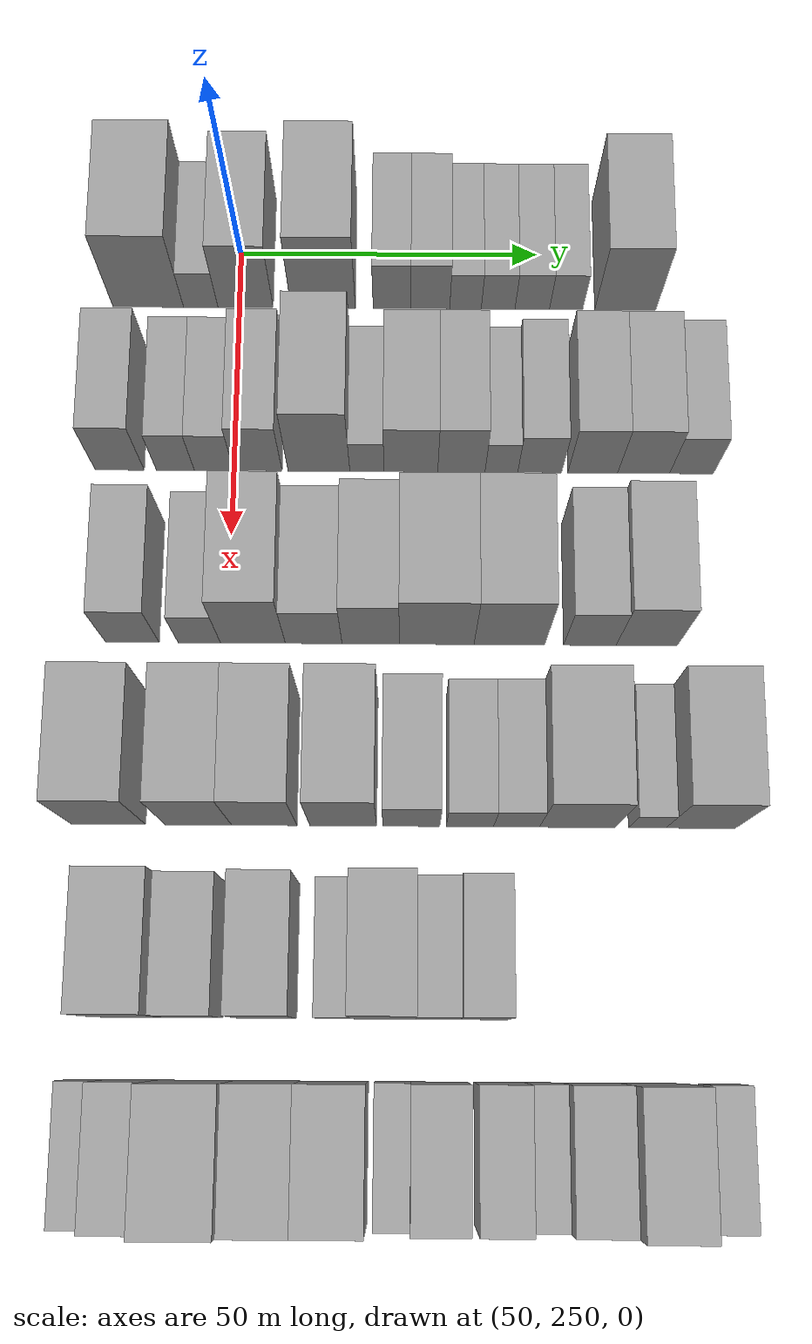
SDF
<sdf version="1.6">
 <world name="default">
  <model name="building_82">
   <static>1</static>
   <pose>50.0000 234.7901 0 0.000000 0.000000 0.000000</pose>
   <link name="link">
    <pose>0 0 12.00 0 0 0</pose>
    <collision name="collision"><geometry><box><size>20.0000 11.8116 24.0000</size></box></geometry></collision>
    <visual name="visual">
     <cast_shadows>0</cast_shadows>
     <geometry><box><size>20.0000 11.8116 24.0000</size></box></geometry>
     <material>
      <script>
       <uri>model://grey_wall/materials/scripts</uri>
       <uri>model://grey_wall/materials/textures</uri>
       <name>vrc/grey_wall</name>
      </script>
     </material>
    </visual>
   </link>
  </model>
  <model name="building_83">
   <static>1</static>
   <pose>50.0000 243.5842 0 0.000000 0.000000 0.000000</pose>
   <link name="link">
    <pose>0 0 6.00 0 0 0</pose>
    <collision name="collision"><geometry><box><size>20.0000 5.7765 12.0000</size></box></geometry></collision>
    <visual name="visual">
     <cast_shadows>0</cast_shadows>
     <geometry><box><size>20.0000 5.7765 12.0000</size></box></geometry>
     <material>
      <script>
       <uri>model://grey_wall/materials/scripts</uri>
       <uri>model://grey_wall/materials/textures</uri>
       <name>vrc/grey_wall</name>
      </script>
     </material>
    </visual>
   </link>
  </model>
  <model name="building_84">
   <static>1</static>
   <pose>50.0000 251.0885 0 0.000000 0.000000 0.000000</pose>
   <link name="link">
    <pose>0 0 10.50 0 0 0</pose>
    <collision name="collision"><geometry><box><size>20.0000 9.2321 21.0000</size></box></geometry></collision>
    <visual name="visual">
     <cast_shadows>0</cast_shadows>
     <geometry><box><size>20.0000 9.2321 21.0000</size></box></geometry>
     <material>
      <script>
       <uri>model://grey_wall/materials/scripts</uri>
       <uri>model://grey_wall/materials/textures</uri>
       <name>vrc/grey_wall</name>
      </script>
     </material>
    </visual>
   </link>
  </model>
  <model name="building_85">
   <static>1</static>
   <pose>50.0000 264.0819 0 0.000000 0.000000 0.000000</pose>
   <link name="link">
    <pose>0 0 12.00 0 0 0</pose>
    <collision name="collision"><geometry><box><size>20.0000 10.7547 24.0000</size></box></geometry></collision>
    <visual name="visual">
     <cast_shadows>0</cast_shadows>
     <geometry><box><size>20.0000 10.7547 24.0000</size></box></geometry>
     <material>
      <script>
       <uri>model://grey_wall/materials/scripts</uri>
       <uri>model://grey_wall/materials/textures</uri>
       <name>vrc/grey_wall</name>
      </script>
     </material>
    </visual>
   </link>
  </model>
  <model name="building_86">
   <static>1</static>
   <pose>50.0000 275.5857 0 0.000000 0.000000 0.000000</pose>
   <link name="link">
    <pose>0 0 7.50 0 0 0</pose>
    <collision name="collision"><geometry><box><size>20.0000 6.2529 15.0000</size></box></geometry></collision>
    <visual name="visual">
     <cast_shadows>0</cast_shadows>
     <geometry><box><size>20.0000 6.2529 15.0000</size></box></geometry>
     <material>
      <script>
       <uri>model://grey_wall/materials/scripts</uri>
       <uri>model://grey_wall/materials/textures</uri>
       <name>vrc/grey_wall</name>
      </script>
     </material>
    </visual>
   </link>
  </model>
  <model name="building_87">
   <static>1</static>
   <pose>50.0000 281.9773 0 0.000000 0.000000 0.000000</pose>
   <link name="link">
    <pose>0 0 7.50 0 0 0</pose>
    <collision name="collision"><geometry><box><size>20.0000 6.5304 15.0000</size></box></geometry></collision>
    <visual name="visual">
     <cast_shadows>0</cast_shadows>
     <geometry><box><size>20.0000 6.5304 15.0000</size></box></geometry>
     <material>
      <script>
       <uri>model://grey_wall/materials/scripts</uri>
       <uri>model://grey_wall/materials/textures</uri>
       <name>vrc/grey_wall</name>
      </script>
     </material>
    </visual>
   </link>
  </model>
  <model name="building_88">
   <static>1</static>
   <pose>50.0000 287.8829 0 0.000000 0.000000 0.000000</pose>
   <link name="link">
    <pose>0 0 6.00 0 0 0</pose>
    <collision name="collision"><geometry><box><size>20.0000 5.2807 12.0000</size></box></geometry></collision>
    <visual name="visual">
     <cast_shadows>0</cast_shadows>
     <geometry><box><size>20.0000 5.2807 12.0000</size></box></geometry>
     <material>
      <script>
       <uri>model://grey_wall/materials/scripts</uri>
       <uri>model://grey_wall/materials/textures</uri>
       <name>vrc/grey_wall</name>
      </script>
     </material>
    </visual>
   </link>
  </model>
  <model name="building_89">
   <static>1</static>
   <pose>50.0000 293.3428 0 0.000000 0.000000 0.000000</pose>
   <link name="link">
    <pose>0 0 6.00 0 0 0</pose>
    <collision name="collision"><geometry><box><size>20.0000 5.6391 12.0000</size></box></geometry></collision>
    <visual name="visual">
     <cast_shadows>0</cast_shadows>
     <geometry><box><size>20.0000 5.6391 12.0000</size></box></geometry>
     <material>
      <script>
       <uri>model://grey_wall/materials/scripts</uri>
       <uri>model://grey_wall/materials/textures</uri>
       <name>vrc/grey_wall</name>
      </script>
     </material>
    </visual>
   </link>
  </model>
  <model name="building_90">
   <static>1</static>
   <pose>50.0000 299.0528 0 0.000000 0.000000 0.000000</pose>
   <link name="link">
    <pose>0 0 6.00 0 0 0</pose>
    <collision name="collision"><geometry><box><size>20.0000 5.7807 12.0000</size></box></geometry></collision>
    <visual name="visual">
     <cast_shadows>0</cast_shadows>
     <geometry><box><size>20.0000 5.7807 12.0000</size></box></geometry>
     <material>
      <script>
       <uri>model://grey_wall/materials/scripts</uri>
       <uri>model://grey_wall/materials/textures</uri>
       <name>vrc/grey_wall</name>
      </script>
     </material>
    </visual>
   </link>
  </model>
  <model name="building_91">
   <static>1</static>
   <pose>50.0000 304.7321 0 0.000000 0.000000 0.000000</pose>
   <link name="link">
    <pose>0 0 6.00 0 0 0</pose>
    <collision name="collision"><geometry><box><size>20.0000 5.5780 12.0000</size></box></geometry></collision>
    <visual name="visual">
     <cast_shadows>0</cast_shadows>
     <geometry><box><size>20.0000 5.5780 12.0000</size></box></geometry>
     <material>
      <script>
       <uri>model://grey_wall/materials/scripts</uri>
       <uri>model://grey_wall/materials/textures</uri>
       <name>vrc/grey_wall</name>
      </script>
     </material>
    </visual>
   </link>
  </model>
  <model name="building_92">
   <static>1</static>
   <pose>50.0000 314.6391 0 0.000000 0.000000 0.000000</pose>
   <link name="link">
    <pose>0 0 10.50 0 0 0</pose>
    <collision name="collision"><geometry><box><size>20.0000 10.2359 21.0000</size></box></geometry></collision>
    <visual name="visual">
     <cast_shadows>0</cast_shadows>
     <geometry><box><size>20.0000 10.2359 21.0000</size></box></geometry>
     <material>
      <script>
       <uri>model://grey_wall/materials/scripts</uri>
       <uri>model://grey_wall/materials/textures</uri>
       <name>vrc/grey_wall</name>
      </script>
     </material>
    </visual>
   </link>
  </model>
  <model name="building_197">
   <static>1</static>
   <pose>79.0000 231.4531 0 0.000000 0.000000 0.000000</pose>
   <link name="link">
    <pose>0 0 9.00 0 0 0</pose>
    <collision name="collision"><geometry><box><size>20.0000 7.9871 18.0000</size></box></geometry></collision>
    <visual name="visual">
     <cast_shadows>0</cast_shadows>
     <geometry><box><size>20.0000 7.9871 18.0000</size></box></geometry>
     <material>
      <script>
       <uri>model://grey_wall/materials/scripts</uri>
       <uri>model://grey_wall/materials/textures</uri>
       <name>vrc/grey_wall</name>
      </script>
     </material>
    </visual>
   </link>
  </model>
  <model name="building_198">
   <static>1</static>
   <pose>79.0000 240.5364 0 0.000000 0.000000 0.000000</pose>
   <link name="link">
    <pose>0 0 7.50 0 0 0</pose>
    <collision name="collision"><geometry><box><size>20.0000 6.1796 15.0000</size></box></geometry></collision>
    <visual name="visual">
     <cast_shadows>0</cast_shadows>
     <geometry><box><size>20.0000 6.1796 15.0000</size></box></geometry>
     <material>
      <script>
       <uri>model://grey_wall/materials/scripts</uri>
       <uri>model://grey_wall/materials/textures</uri>
       <name>vrc/grey_wall</name>
      </script>
     </material>
    </visual>
   </link>
  </model>
  <model name="building_199">
   <static>1</static>
   <pose>79.0000 246.8462 0 0.000000 0.000000 0.000000</pose>
   <link name="link">
    <pose>0 0 7.50 0 0 0</pose>
    <collision name="collision"><geometry><box><size>20.0000 6.4398 15.0000</size></box></geometry></collision>
    <visual name="visual">
     <cast_shadows>0</cast_shadows>
     <geometry><box><size>20.0000 6.4398 15.0000</size></box></geometry>
     <material>
      <script>
       <uri>model://grey_wall/materials/scripts</uri>
       <uri>model://grey_wall/materials/textures</uri>
       <name>vrc/grey_wall</name>
      </script>
     </material>
    </visual>
   </link>
  </model>
  <model name="building_200">
   <static>1</static>
   <pose>79.0000 253.9946 0 0.000000 0.000000 0.000000</pose>
   <link name="link">
    <pose>0 0 9.00 0 0 0</pose>
    <collision name="collision"><geometry><box><size>20.0000 7.8572 18.0000</size></box></geometry></collision>
    <visual name="visual">
     <cast_shadows>0</cast_shadows>
     <geometry><box><size>20.0000 7.8572 18.0000</size></box></geometry>
     <material>
      <script>
       <uri>model://grey_wall/materials/scripts</uri>
       <uri>model://grey_wall/materials/textures</uri>
       <name>vrc/grey_wall</name>
      </script>
     </material>
    </visual>
   </link>
  </model>
  <model name="building_201">
   <static>1</static>
   <pose>79.0000 263.9439 0 0.000000 0.000000 0.000000</pose>
   <link name="link">
    <pose>0 0 12.00 0 0 0</pose>
    <collision name="collision"><geometry><box><size>20.0000 10.0415 24.0000</size></box></geometry></collision>
    <visual name="visual">
     <cast_shadows>0</cast_shadows>
     <geometry><box><size>20.0000 10.0415 24.0000</size></box></geometry>
     <material>
      <script>
       <uri>model://grey_wall/materials/scripts</uri>
       <uri>model://grey_wall/materials/textures</uri>
       <name>vrc/grey_wall</name>
      </script>
     </material>
    </visual>
   </link>
  </model>
  <model name="building_202">
   <static>1</static>
   <pose>79.0000 271.7608 0 0.000000 0.000000 0.000000</pose>
   <link name="link">
    <pose>0 0 6.00 0 0 0</pose>
    <collision name="collision"><geometry><box><size>20.0000 5.5922 12.0000</size></box></geometry></collision>
    <visual name="visual">
     <cast_shadows>0</cast_shadows>
     <geometry><box><size>20.0000 5.5922 12.0000</size></box></geometry>
     <material>
      <script>
       <uri>model://grey_wall/materials/scripts</uri>
       <uri>model://grey_wall/materials/textures</uri>
       <name>vrc/grey_wall</name>
      </script>
     </material>
    </visual>
   </link>
  </model>
  <model name="building_203">
   <static>1</static>
   <pose>79.0000 278.9169 0 0.000000 0.000000 0.000000</pose>
   <link name="link">
    <pose>0 0 9.00 0 0 0</pose>
    <collision name="collision"><geometry><box><size>20.0000 8.7202 18.0000</size></box></geometry></collision>
    <visual name="visual">
     <cast_shadows>0</cast_shadows>
     <geometry><box><size>20.0000 8.7202 18.0000</size></box></geometry>
     <material>
      <script>
       <uri>model://grey_wall/materials/scripts</uri>
       <uri>model://grey_wall/materials/textures</uri>
       <name>vrc/grey_wall</name>
      </script>
     </material>
    </visual>
   </link>
  </model>
  <model name="building_204">
   <static>1</static>
   <pose>79.0000 287.1266 0 0.000000 0.000000 0.000000</pose>
   <link name="link">
    <pose>0 0 9.00 0 0 0</pose>
    <collision name="collision"><geometry><box><size>20.0000 7.6991 18.0000</size></box></geometry></collision>
    <visual name="visual">
     <cast_shadows>0</cast_shadows>
     <geometry><box><size>20.0000 7.6991 18.0000</size></box></geometry>
     <material>
      <script>
       <uri>model://grey_wall/materials/scripts</uri>
       <uri>model://grey_wall/materials/textures</uri>
       <name>vrc/grey_wall</name>
      </script>
     </material>
    </visual>
   </link>
  </model>
  <model name="building_205">
   <static>1</static>
   <pose>79.0000 293.6410 0 0.000000 0.000000 0.000000</pose>
   <link name="link">
    <pose>0 0 6.00 0 0 0</pose>
    <collision name="collision"><geometry><box><size>20.0000 5.3297 12.0000</size></box></geometry></collision>
    <visual name="visual">
     <cast_shadows>0</cast_shadows>
     <geometry><box><size>20.0000 5.3297 12.0000</size></box></geometry>
     <material>
      <script>
       <uri>model://grey_wall/materials/scripts</uri>
       <uri>model://grey_wall/materials/textures</uri>
       <name>vrc/grey_wall</name>
      </script>
     </material>
    </visual>
   </link>
  </model>
  <model name="building_206">
   <static>1</static>
   <pose>79.0000 299.8928 0 0.000000 0.000000 0.000000</pose>
   <link name="link">
    <pose>0 0 7.50 0 0 0</pose>
    <collision name="collision"><geometry><box><size>20.0000 7.1740 15.0000</size></box></geometry></collision>
    <visual name="visual">
     <cast_shadows>0</cast_shadows>
     <geometry><box><size>20.0000 7.1740 15.0000</size></box></geometry>
     <material>
      <script>
       <uri>model://grey_wall/materials/scripts</uri>
       <uri>model://grey_wall/materials/textures</uri>
       <name>vrc/grey_wall</name>
      </script>
     </material>
    </visual>
   </link>
  </model>
  <model name="building_207">
   <static>1</static>
   <pose>79.0000 308.5416 0 0.000000 0.000000 0.000000</pose>
   <link name="link">
    <pose>0 0 9.00 0 0 0</pose>
    <collision name="collision"><geometry><box><size>20.0000 8.1234 18.0000</size></box></geometry></collision>
    <visual name="visual">
     <cast_shadows>0</cast_shadows>
     <geometry><box><size>20.0000 8.1234 18.0000</size></box></geometry>
     <material>
      <script>
       <uri>model://grey_wall/materials/scripts</uri>
       <uri>model://grey_wall/materials/textures</uri>
       <name>vrc/grey_wall</name>
      </script>
     </material>
    </visual>
   </link>
  </model>
  <model name="building_208">
   <static>1</static>
   <pose>79.0000 316.8436 0 0.000000 0.000000 0.000000</pose>
   <link name="link">
    <pose>0 0 9.00 0 0 0</pose>
    <collision name="collision"><geometry><box><size>20.0000 8.4806 18.0000</size></box></geometry></collision>
    <visual name="visual">
     <cast_shadows>0</cast_shadows>
     <geometry><box><size>20.0000 8.4806 18.0000</size></box></geometry>
     <material>
      <script>
       <uri>model://grey_wall/materials/scripts</uri>
       <uri>model://grey_wall/materials/textures</uri>
       <name>vrc/grey_wall</name>
      </script>
     </material>
    </visual>
   </link>
  </model>
  <model name="building_209">
   <static>1</static>
   <pose>79.0000 324.6524 0 0.000000 0.000000 0.000000</pose>
   <link name="link">
    <pose>0 0 7.50 0 0 0</pose>
    <collision name="collision"><geometry><box><size>20.0000 7.1371 15.0000</size></box></geometry></collision>
    <visual name="visual">
     <cast_shadows>0</cast_shadows>
     <geometry><box><size>20.0000 7.1371 15.0000</size></box></geometry>
     <material>
      <script>
       <uri>model://grey_wall/materials/scripts</uri>
       <uri>model://grey_wall/materials/textures</uri>
       <name>vrc/grey_wall</name>
      </script>
     </material>
    </visual>
   </link>
  </model>
  <model name="building_310">
   <static>1</static>
   <pose>108.0000 234.9306 0 0.000000 0.000000 0.000000</pose>
   <link name="link">
    <pose>0 0 9.00 0 0 0</pose>
    <collision name="collision"><geometry><box><size>20.0000 8.5014 18.0000</size></box></geometry></collision>
    <visual name="visual">
     <cast_shadows>0</cast_shadows>
     <geometry><box><size>20.0000 8.5014 18.0000</size></box></geometry>
     <material>
      <script>
       <uri>model://grey_wall/materials/scripts</uri>
       <uri>model://grey_wall/materials/textures</uri>
       <name>vrc/grey_wall</name>
      </script>
     </material>
    </visual>
   </link>
  </model>
  <model name="building_311">
   <static>1</static>
   <pose>108.0000 245.5363 0 0.000000 0.000000 0.000000</pose>
   <link name="link">
    <pose>0 0 7.50 0 0 0</pose>
    <collision name="collision"><geometry><box><size>20.0000 6.7099 15.0000</size></box></geometry></collision>
    <visual name="visual">
     <cast_shadows>0</cast_shadows>
     <geometry><box><size>20.0000 6.7099 15.0000</size></box></geometry>
     <material>
      <script>
       <uri>model://grey_wall/materials/scripts</uri>
       <uri>model://grey_wall/materials/textures</uri>
       <name>vrc/grey_wall</name>
      </script>
     </material>
    </visual>
   </link>
  </model>
  <model name="building_312">
   <static>1</static>
   <pose>108.0000 254.0396 0 0.000000 0.000000 0.000000</pose>
   <link name="link">
    <pose>0 0 12.00 0 0 0</pose>
    <collision name="collision"><geometry><box><size>20.0000 10.2968 24.0000</size></box></geometry></collision>
    <visual name="visual">
     <cast_shadows>0</cast_shadows>
     <geometry><box><size>20.0000 10.2968 24.0000</size></box></geometry>
     <material>
      <script>
       <uri>model://grey_wall/materials/scripts</uri>
       <uri>model://grey_wall/materials/textures</uri>
       <name>vrc/grey_wall</name>
      </script>
     </material>
    </visual>
   </link>
  </model>
  <model name="building_313">
   <static>1</static>
   <pose>108.0000 263.6789 0 0.000000 0.000000 0.000000</pose>
   <link name="link">
    <pose>0 0 9.00 0 0 0</pose>
    <collision name="collision"><geometry><box><size>20.0000 8.9817 18.0000</size></box></geometry></collision>
    <visual name="visual">
     <cast_shadows>0</cast_shadows>
     <geometry><box><size>20.0000 8.9817 18.0000</size></box></geometry>
     <material>
      <script>
       <uri>model://grey_wall/materials/scripts</uri>
       <uri>model://grey_wall/materials/textures</uri>
       <name>vrc/grey_wall</name>
      </script>
     </material>
    </visual>
   </link>
  </model>
  <model name="building_314">
   <static>1</static>
   <pose>108.0000 272.7042 0 0.000000 0.000000 0.000000</pose>
   <link name="link">
    <pose>0 0 10.50 0 0 0</pose>
    <collision name="collision"><geometry><box><size>20.0000 9.0689 21.0000</size></box></geometry></collision>
    <visual name="visual">
     <cast_shadows>0</cast_shadows>
     <geometry><box><size>20.0000 9.0689 21.0000</size></box></geometry>
     <material>
      <script>
       <uri>model://grey_wall/materials/scripts</uri>
       <uri>model://grey_wall/materials/textures</uri>
       <name>vrc/grey_wall</name>
      </script>
     </material>
    </visual>
   </link>
  </model>
  <model name="building_315">
   <static>1</static>
   <pose>108.0000 283.1587 0 0.000000 0.000000 0.000000</pose>
   <link name="link">
    <pose>0 0 12.00 0 0 0</pose>
    <collision name="collision"><geometry><box><size>20.0000 11.8402 24.0000</size></box></geometry></collision>
    <visual name="visual">
     <cast_shadows>0</cast_shadows>
     <geometry><box><size>20.0000 11.8402 24.0000</size></box></geometry>
     <material>
      <script>
       <uri>model://grey_wall/materials/scripts</uri>
       <uri>model://grey_wall/materials/textures</uri>
       <name>vrc/grey_wall</name>
      </script>
     </material>
    </visual>
   </link>
  </model>
  <model name="building_316">
   <static>1</static>
   <pose>108.0000 294.6804 0 0.000000 0.000000 0.000000</pose>
   <link name="link">
    <pose>0 0 12.00 0 0 0</pose>
    <collision name="collision"><geometry><box><size>20.0000 11.2031 24.0000</size></box></geometry></collision>
    <visual name="visual">
     <cast_shadows>0</cast_shadows>
     <geometry><box><size>20.0000 11.2031 24.0000</size></box></geometry>
     <material>
      <script>
       <uri>model://grey_wall/materials/scripts</uri>
       <uri>model://grey_wall/materials/textures</uri>
       <name>vrc/grey_wall</name>
      </script>
     </material>
    </visual>
   </link>
  </model>
  <model name="building_317">
   <static>1</static>
   <pose>108.0000 307.4348 0 0.000000 0.000000 0.000000</pose>
   <link name="link">
    <pose>0 0 9.00 0 0 0</pose>
    <collision name="collision"><geometry><box><size>20.0000 8.3057 18.0000</size></box></geometry></collision>
    <visual name="visual">
     <cast_shadows>0</cast_shadows>
     <geometry><box><size>20.0000 8.3057 18.0000</size></box></geometry>
     <material>
      <script>
       <uri>model://grey_wall/materials/scripts</uri>
       <uri>model://grey_wall/materials/textures</uri>
       <name>vrc/grey_wall</name>
      </script>
     </material>
    </visual>
   </link>
  </model>
  <model name="building_318">
   <static>1</static>
   <pose>108.0000 316.4542 0 0.000000 0.000000 0.000000</pose>
   <link name="link">
    <pose>0 0 10.50 0 0 0</pose>
    <collision name="collision"><geometry><box><size>20.0000 9.7331 21.0000</size></box></geometry></collision>
    <visual name="visual">
     <cast_shadows>0</cast_shadows>
     <geometry><box><size>20.0000 9.7331 21.0000</size></box></geometry>
     <material>
      <script>
       <uri>model://grey_wall/materials/scripts</uri>
       <uri>model://grey_wall/materials/textures</uri>
       <name>vrc/grey_wall</name>
      </script>
     </material>
    </visual>
   </link>
  </model>
  <model name="building_420">
   <static>1</static>
   <pose>137.0000 232.6401 0 0.000000 0.000000 0.000000</pose>
   <link name="link">
    <pose>0 0 12.00 0 0 0</pose>
    <collision name="collision"><geometry><box><size>20.0000 11.4486 24.0000</size></box></geometry></collision>
    <visual name="visual">
     <cast_shadows>0</cast_shadows>
     <geometry><box><size>20.0000 11.4486 24.0000</size></box></geometry>
     <material>
      <script>
       <uri>model://grey_wall/materials/scripts</uri>
       <uri>model://grey_wall/materials/textures</uri>
       <name>vrc/grey_wall</name>
      </script>
     </material>
    </visual>
   </link>
  </model>
  <model name="building_421">
   <static>1</static>
   <pose>137.0000 246.5015 0 0.000000 0.000000 0.000000</pose>
   <link name="link">
    <pose>0 0 12.00 0 0 0</pose>
    <collision name="collision"><geometry><box><size>20.0000 10.2742 24.0000</size></box></geometry></collision>
    <visual name="visual">
     <cast_shadows>0</cast_shadows>
     <geometry><box><size>20.0000 10.2742 24.0000</size></box></geometry>
     <material>
      <script>
       <uri>model://grey_wall/materials/scripts</uri>
       <uri>model://grey_wall/materials/textures</uri>
       <name>vrc/grey_wall</name>
      </script>
     </material>
    </visual>
   </link>
  </model>
  <model name="building_422">
   <static>1</static>
   <pose>137.0000 256.6675 0 0.000000 0.000000 0.000000</pose>
   <link name="link">
    <pose>0 0 12.00 0 0 0</pose>
    <collision name="collision"><geometry><box><size>20.0000 10.0579 24.0000</size></box></geometry></collision>
    <visual name="visual">
     <cast_shadows>0</cast_shadows>
     <geometry><box><size>20.0000 10.0579 24.0000</size></box></geometry>
     <material>
      <script>
       <uri>model://grey_wall/materials/scripts</uri>
       <uri>model://grey_wall/materials/textures</uri>
       <name>vrc/grey_wall</name>
      </script>
     </material>
    </visual>
   </link>
  </model>
  <model name="building_423">
   <static>1</static>
   <pose>137.0000 268.8392 0 0.000000 0.000000 0.000000</pose>
   <link name="link">
    <pose>0 0 12.00 0 0 0</pose>
    <collision name="collision"><geometry><box><size>20.0000 10.2855 24.0000</size></box></geometry></collision>
    <visual name="visual">
     <cast_shadows>0</cast_shadows>
     <geometry><box><size>20.0000 10.2855 24.0000</size></box></geometry>
     <material>
      <script>
       <uri>model://grey_wall/materials/scripts</uri>
       <uri>model://grey_wall/materials/textures</uri>
       <name>vrc/grey_wall</name>
      </script>
     </material>
    </visual>
   </link>
  </model>
  <model name="building_424">
   <static>1</static>
   <pose>137.0000 279.3304 0 0.000000 0.000000 0.000000</pose>
   <link name="link">
    <pose>0 0 9.00 0 0 0</pose>
    <collision name="collision"><geometry><box><size>20.0000 8.6967 18.0000</size></box></geometry></collision>
    <visual name="visual">
     <cast_shadows>0</cast_shadows>
     <geometry><box><size>20.0000 8.6967 18.0000</size></box></geometry>
     <material>
      <script>
       <uri>model://grey_wall/materials/scripts</uri>
       <uri>model://grey_wall/materials/textures</uri>
       <name>vrc/grey_wall</name>
      </script>
     </material>
    </visual>
   </link>
  </model>
  <model name="building_425">
   <static>1</static>
   <pose>137.0000 288.3190 0 0.000000 0.000000 0.000000</pose>
   <link name="link">
    <pose>0 0 7.50 0 0 0</pose>
    <collision name="collision"><geometry><box><size>20.0000 7.2805 15.0000</size></box></geometry></collision>
    <visual name="visual">
     <cast_shadows>0</cast_shadows>
     <geometry><box><size>20.0000 7.2805 15.0000</size></box></geometry>
     <material>
      <script>
       <uri>model://grey_wall/materials/scripts</uri>
       <uri>model://grey_wall/materials/textures</uri>
       <name>vrc/grey_wall</name>
      </script>
     </material>
    </visual>
   </link>
  </model>
  <model name="building_426">
   <static>1</static>
   <pose>137.0000 295.4996 0 0.000000 0.000000 0.000000</pose>
   <link name="link">
    <pose>0 0 7.50 0 0 0</pose>
    <collision name="collision"><geometry><box><size>20.0000 7.0808 15.0000</size></box></geometry></collision>
    <visual name="visual">
     <cast_shadows>0</cast_shadows>
     <geometry><box><size>20.0000 7.0808 15.0000</size></box></geometry>
     <material>
      <script>
       <uri>model://grey_wall/materials/scripts</uri>
       <uri>model://grey_wall/materials/textures</uri>
       <name>vrc/grey_wall</name>
      </script>
     </material>
    </visual>
   </link>
  </model>
  <model name="building_427">
   <static>1</static>
   <pose>137.0000 304.9110 0 0.000000 0.000000 0.000000</pose>
   <link name="link">
    <pose>0 0 12.00 0 0 0</pose>
    <collision name="collision"><geometry><box><size>20.0000 11.7420 24.0000</size></box></geometry></collision>
    <visual name="visual">
     <cast_shadows>0</cast_shadows>
     <geometry><box><size>20.0000 11.7420 24.0000</size></box></geometry>
     <material>
      <script>
       <uri>model://grey_wall/materials/scripts</uri>
       <uri>model://grey_wall/materials/textures</uri>
       <name>vrc/grey_wall</name>
      </script>
     </material>
    </visual>
   </link>
  </model>
  <model name="building_428">
   <static>1</static>
   <pose>137.0000 315.6591 0 0.000000 0.000000 0.000000</pose>
   <link name="link">
    <pose>0 0 6.00 0 0 0</pose>
    <collision name="collision"><geometry><box><size>20.0000 5.7542 12.0000</size></box></geometry></collision>
    <visual name="visual">
     <cast_shadows>0</cast_shadows>
     <geometry><box><size>20.0000 5.7542 12.0000</size></box></geometry>
     <material>
      <script>
       <uri>model://grey_wall/materials/scripts</uri>
       <uri>model://grey_wall/materials/textures</uri>
       <name>vrc/grey_wall</name>
      </script>
     </material>
    </visual>
   </link>
  </model>
  <model name="building_429">
   <static>1</static>
   <pose>137.0000 323.8834 0 0.000000 0.000000 0.000000</pose>
   <link name="link">
    <pose>0 0 12.00 0 0 0</pose>
    <collision name="collision"><geometry><box><size>20.0000 10.6945 24.0000</size></box></geometry></collision>
    <visual name="visual">
     <cast_shadows>0</cast_shadows>
     <geometry><box><size>20.0000 10.6945 24.0000</size></box></geometry>
     <material>
      <script>
       <uri>model://grey_wall/materials/scripts</uri>
       <uri>model://grey_wall/materials/textures</uri>
       <name>vrc/grey_wall</name>
      </script>
     </material>
    </visual>
   </link>
  </model>
  <model name="building_539">
   <static>1</static>
   <pose>166.0000 237.2424 0 0.000000 0.000000 0.000000</pose>
   <link name="link">
    <pose>0 0 12.00 0 0 0</pose>
    <collision name="collision"><geometry><box><size>20.0000 10.4771 24.0000</size></box></geometry></collision>
    <visual name="visual">
     <cast_shadows>0</cast_shadows>
     <geometry><box><size>20.0000 10.4771 24.0000</size></box></geometry>
     <material>
      <script>
       <uri>model://grey_wall/materials/scripts</uri>
       <uri>model://grey_wall/materials/textures</uri>
       <name>vrc/grey_wall</name>
      </script>
     </material>
    </visual>
   </link>
  </model>
  <model name="building_540">
   <static>1</static>
   <pose>166.0000 246.8794 0 0.000000 0.000000 0.000000</pose>
   <link name="link">
    <pose>0 0 9.00 0 0 0</pose>
    <collision name="collision"><geometry><box><size>20.0000 8.7969 18.0000</size></box></geometry></collision>
    <visual name="visual">
     <cast_shadows>0</cast_shadows>
     <geometry><box><size>20.0000 8.7969 18.0000</size></box></geometry>
     <material>
      <script>
       <uri>model://grey_wall/materials/scripts</uri>
       <uri>model://grey_wall/materials/textures</uri>
       <name>vrc/grey_wall</name>
      </script>
     </material>
    </visual>
   </link>
  </model>
  <model name="building_541">
   <static>1</static>
   <pose>166.0000 257.8023 0 0.000000 0.000000 0.000000</pose>
   <link name="link">
    <pose>0 0 10.50 0 0 0</pose>
    <collision name="collision"><geometry><box><size>20.0000 9.0489 21.0000</size></box></geometry></collision>
    <visual name="visual">
     <cast_shadows>0</cast_shadows>
     <geometry><box><size>20.0000 9.0489 21.0000</size></box></geometry>
     <material>
      <script>
       <uri>model://grey_wall/materials/scripts</uri>
       <uri>model://grey_wall/materials/textures</uri>
       <name>vrc/grey_wall</name>
      </script>
     </material>
    </visual>
   </link>
  </model>
  <model name="building_542">
   <static>1</static>
   <pose>166.0000 267.8949 0 0.000000 0.000000 0.000000</pose>
   <link name="link">
    <pose>0 0 6.00 0 0 0</pose>
    <collision name="collision"><geometry><box><size>20.0000 5.1362 12.0000</size></box></geometry></collision>
    <visual name="visual">
     <cast_shadows>0</cast_shadows>
     <geometry><box><size>20.0000 5.1362 12.0000</size></box></geometry>
     <material>
      <script>
       <uri>model://grey_wall/materials/scripts</uri>
       <uri>model://grey_wall/materials/textures</uri>
       <name>vrc/grey_wall</name>
      </script>
     </material>
    </visual>
   </link>
  </model>
  <model name="building_543">
   <static>1</static>
   <pose>166.0000 275.3148 0 0.000000 0.000000 0.000000</pose>
   <link name="link">
    <pose>0 0 12.00 0 0 0</pose>
    <collision name="collision"><geometry><box><size>20.0000 9.7035 24.0000</size></box></geometry></collision>
    <visual name="visual">
     <cast_shadows>0</cast_shadows>
     <geometry><box><size>20.0000 9.7035 24.0000</size></box></geometry>
     <material>
      <script>
       <uri>model://grey_wall/materials/scripts</uri>
       <uri>model://grey_wall/materials/textures</uri>
       <name>vrc/grey_wall</name>
      </script>
     </material>
    </visual>
   </link>
  </model>
  <model name="building_544">
   <static>1</static>
   <pose>166.0000 283.4241 0 0.000000 0.000000 0.000000</pose>
   <link name="link">
    <pose>0 0 7.50 0 0 0</pose>
    <collision name="collision"><geometry><box><size>20.0000 6.5151 15.0000</size></box></geometry></collision>
    <visual name="visual">
     <cast_shadows>0</cast_shadows>
     <geometry><box><size>20.0000 6.5151 15.0000</size></box></geometry>
     <material>
      <script>
       <uri>model://grey_wall/materials/scripts</uri>
       <uri>model://grey_wall/materials/textures</uri>
       <name>vrc/grey_wall</name>
      </script>
     </material>
    </visual>
   </link>
  </model>
  <model name="building_545">
   <static>1</static>
   <pose>166.0000 290.3057 0 0.000000 0.000000 0.000000</pose>
   <link name="link">
    <pose>0 0 9.00 0 0 0</pose>
    <collision name="collision"><geometry><box><size>20.0000 7.2482 18.0000</size></box></geometry></collision>
    <visual name="visual">
     <cast_shadows>0</cast_shadows>
     <geometry><box><size>20.0000 7.2482 18.0000</size></box></geometry>
     <material>
      <script>
       <uri>model://grey_wall/materials/scripts</uri>
       <uri>model://grey_wall/materials/textures</uri>
       <name>vrc/grey_wall</name>
      </script>
     </material>
    </visual>
   </link>
  </model>
  <model name="building_642">
   <static>1</static>
   <pose>195.0000 231.5932 0 0.000000 0.000000 0.000000</pose>
   <link name="link">
    <pose>0 0 6.00 0 0 0</pose>
    <collision name="collision"><geometry><box><size>20.0000 5.3984 12.0000</size></box></geometry></collision>
    <visual name="visual">
     <cast_shadows>0</cast_shadows>
     <geometry><box><size>20.0000 5.3984 12.0000</size></box></geometry>
     <material>
      <script>
       <uri>model://grey_wall/materials/scripts</uri>
       <uri>model://grey_wall/materials/textures</uri>
       <name>vrc/grey_wall</name>
      </script>
     </material>
    </visual>
   </link>
  </model>
  <model name="building_643">
   <static>1</static>
   <pose>195.0000 238.1357 0 0.000000 0.000000 0.000000</pose>
   <link name="link">
    <pose>0 0 9.00 0 0 0</pose>
    <collision name="collision"><geometry><box><size>20.0000 7.6866 18.0000</size></box></geometry></collision>
    <visual name="visual">
     <cast_shadows>0</cast_shadows>
     <geometry><box><size>20.0000 7.6866 18.0000</size></box></geometry>
     <material>
      <script>
       <uri>model://grey_wall/materials/scripts</uri>
       <uri>model://grey_wall/materials/textures</uri>
       <name>vrc/grey_wall</name>
      </script>
     </material>
    </visual>
   </link>
  </model>
  <model name="building_644">
   <static>1</static>
   <pose>195.0000 247.6889 0 0.000000 0.000000 0.000000</pose>
   <link name="link">
    <pose>0 0 12.00 0 0 0</pose>
    <collision name="collision"><geometry><box><size>20.0000 11.4199 24.0000</size></box></geometry></collision>
    <visual name="visual">
     <cast_shadows>0</cast_shadows>
     <geometry><box><size>20.0000 11.4199 24.0000</size></box></geometry>
     <material>
      <script>
       <uri>model://grey_wall/materials/scripts</uri>
       <uri>model://grey_wall/materials/textures</uri>
       <name>vrc/grey_wall</name>
      </script>
     </material>
    </visual>
   </link>
  </model>
  <model name="building_645">
   <static>1</static>
   <pose>195.0000 258.2882 0 0.000000 0.000000 0.000000</pose>
   <link name="link">
    <pose>0 0 10.50 0 0 0</pose>
    <collision name="collision"><geometry><box><size>20.0000 9.7786 21.0000</size></box></geometry></collision>
    <visual name="visual">
     <cast_shadows>0</cast_shadows>
     <geometry><box><size>20.0000 9.7786 21.0000</size></box></geometry>
     <material>
      <script>
       <uri>model://grey_wall/materials/scripts</uri>
       <uri>model://grey_wall/materials/textures</uri>
       <name>vrc/grey_wall</name>
      </script>
     </material>
    </visual>
   </link>
  </model>
  <model name="building_646">
   <static>1</static>
   <pose>195.0000 268.1791 0 0.000000 0.000000 0.000000</pose>
   <link name="link">
    <pose>0 0 10.50 0 0 0</pose>
    <collision name="collision"><geometry><box><size>20.0000 10.0033 21.0000</size></box></geometry></collision>
    <visual name="visual">
     <cast_shadows>0</cast_shadows>
     <geometry><box><size>20.0000 10.0033 21.0000</size></box></geometry>
     <material>
      <script>
       <uri>model://grey_wall/materials/scripts</uri>
       <uri>model://grey_wall/materials/textures</uri>
       <name>vrc/grey_wall</name>
      </script>
     </material>
    </visual>
   </link>
  </model>
  <model name="building_647">
   <static>1</static>
   <pose>195.0000 276.7895 0 0.000000 0.000000 0.000000</pose>
   <link name="link">
    <pose>0 0 6.00 0 0 0</pose>
    <collision name="collision"><geometry><box><size>20.0000 5.2174 12.0000</size></box></geometry></collision>
    <visual name="visual">
     <cast_shadows>0</cast_shadows>
     <geometry><box><size>20.0000 5.2174 12.0000</size></box></geometry>
     <material>
      <script>
       <uri>model://grey_wall/materials/scripts</uri>
       <uri>model://grey_wall/materials/textures</uri>
       <name>vrc/grey_wall</name>
      </script>
     </material>
    </visual>
   </link>
  </model>
  <model name="building_648">
   <static>1</static>
   <pose>195.0000 283.5950 0 0.000000 0.000000 0.000000</pose>
   <link name="link">
    <pose>0 0 9.00 0 0 0</pose>
    <collision name="collision"><geometry><box><size>20.0000 8.3937 18.0000</size></box></geometry></collision>
    <visual name="visual">
     <cast_shadows>0</cast_shadows>
     <geometry><box><size>20.0000 8.3937 18.0000</size></box></geometry>
     <material>
      <script>
       <uri>model://grey_wall/materials/scripts</uri>
       <uri>model://grey_wall/materials/textures</uri>
       <name>vrc/grey_wall</name>
      </script>
     </material>
    </visual>
   </link>
  </model>
  <model name="building_649">
   <static>1</static>
   <pose>195.0000 292.5487 0 0.000000 0.000000 0.000000</pose>
   <link name="link">
    <pose>0 0 9.00 0 0 0</pose>
    <collision name="collision"><geometry><box><size>20.0000 7.5136 18.0000</size></box></geometry></collision>
    <visual name="visual">
     <cast_shadows>0</cast_shadows>
     <geometry><box><size>20.0000 7.5136 18.0000</size></box></geometry>
     <material>
      <script>
       <uri>model://grey_wall/materials/scripts</uri>
       <uri>model://grey_wall/materials/textures</uri>
       <name>vrc/grey_wall</name>
      </script>
     </material>
    </visual>
   </link>
  </model>
  <model name="building_650">
   <static>1</static>
   <pose>195.0000 299.0274 0 0.000000 0.000000 0.000000</pose>
   <link name="link">
    <pose>0 0 6.00 0 0 0</pose>
    <collision name="collision"><geometry><box><size>20.0000 5.4439 12.0000</size></box></geometry></collision>
    <visual name="visual">
     <cast_shadows>0</cast_shadows>
     <geometry><box><size>20.0000 5.4439 12.0000</size></box></geometry>
     <material>
      <script>
       <uri>model://grey_wall/materials/scripts</uri>
       <uri>model://grey_wall/materials/textures</uri>
       <name>vrc/grey_wall</name>
      </script>
     </material>
    </visual>
   </link>
  </model>
  <model name="building_651">
   <static>1</static>
   <pose>195.0000 306.0587 0 0.000000 0.000000 0.000000</pose>
   <link name="link">
    <pose>0 0 9.00 0 0 0</pose>
    <collision name="collision"><geometry><box><size>20.0000 8.6186 18.0000</size></box></geometry></collision>
    <visual name="visual">
     <cast_shadows>0</cast_shadows>
     <geometry><box><size>20.0000 8.6186 18.0000</size></box></geometry>
     <material>
      <script>
       <uri>model://grey_wall/materials/scripts</uri>
       <uri>model://grey_wall/materials/textures</uri>
       <name>vrc/grey_wall</name>
      </script>
     </material>
    </visual>
   </link>
  </model>
  <model name="building_652">
   <static>1</static>
   <pose>195.0000 315.2109 0 0.000000 0.000000 0.000000</pose>
   <link name="link">
    <pose>0 0 12.00 0 0 0</pose>
    <collision name="collision"><geometry><box><size>20.0000 9.6859 24.0000</size></box></geometry></collision>
    <visual name="visual">
     <cast_shadows>0</cast_shadows>
     <geometry><box><size>20.0000 9.6859 24.0000</size></box></geometry>
     <material>
      <script>
       <uri>model://grey_wall/materials/scripts</uri>
       <uri>model://grey_wall/materials/textures</uri>
       <name>vrc/grey_wall</name>
      </script>
     </material>
    </visual>
   </link>
  </model>
  <model name="building_653">
   <static>1</static>
   <pose>195.0000 324.9436 0 0.000000 0.000000 0.000000</pose>
   <link name="link">
    <pose>0 0 6.00 0 0 0</pose>
    <collision name="collision"><geometry><box><size>20.0000 5.7794 12.0000</size></box></geometry></collision>
    <visual name="visual">
     <cast_shadows>0</cast_shadows>
     <geometry><box><size>20.0000 5.7794 12.0000</size></box></geometry>
     <material>
      <script>
       <uri>model://grey_wall/materials/scripts</uri>
       <uri>model://grey_wall/materials/textures</uri>
       <name>vrc/grey_wall</name>
      </script>
     </material>
    </visual>
   </link>
  </model>
 </world>
</sdf>
